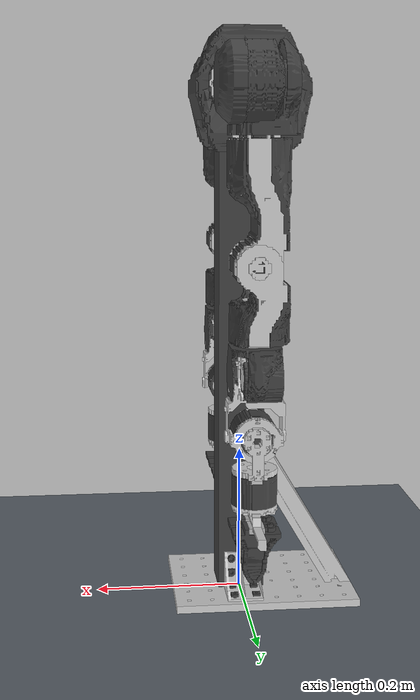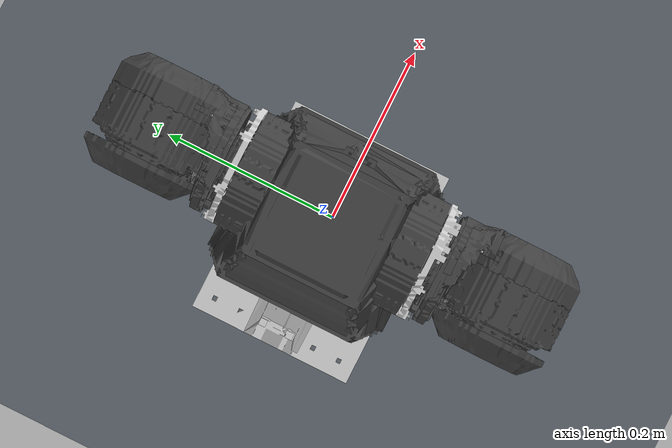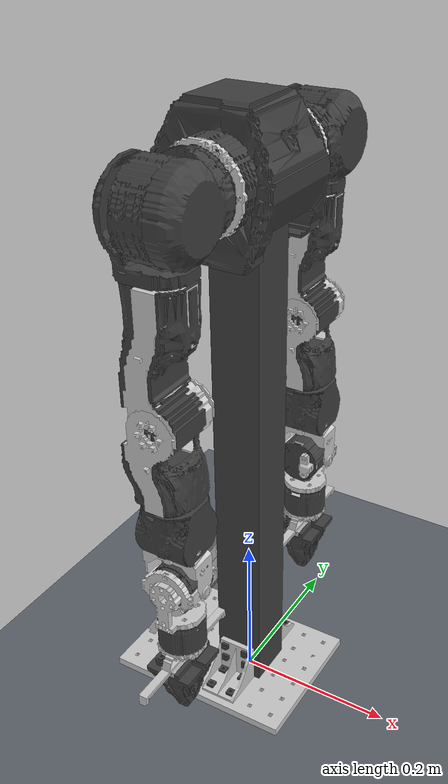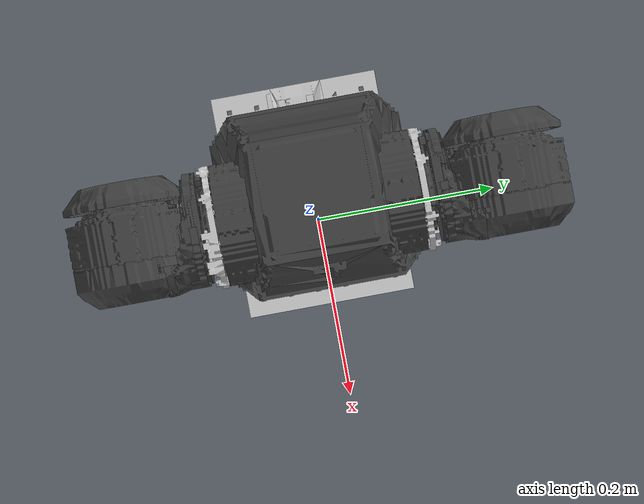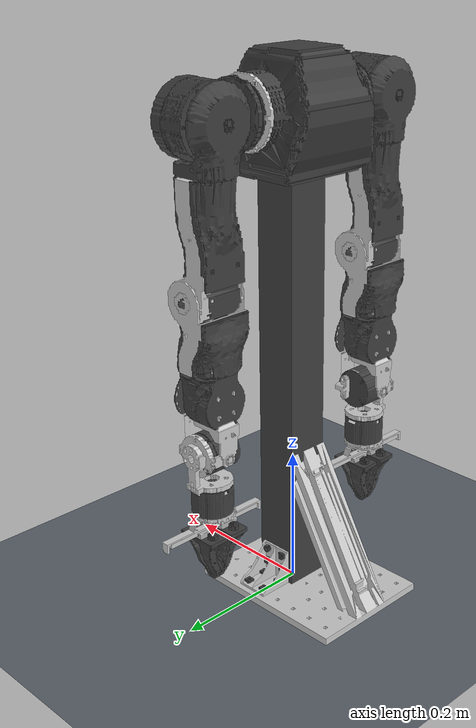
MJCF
<mujoco model="OpenArm teleoperation scene">
  <!-- Keep the signed robot model and all its geometry unchanged. -->
  <include file="openarm_bimanual.xml"/>
  <visual>
    <headlight ambient="0.25 0.25 0.25" diffuse="0.45 0.45 0.45" specular="0.2 0.2 0.2"/>
    <rgba haze="0.75 0.8 0.85 1"/>
    <global offwidth="1280" offheight="720"/>
  </visual>
  <statistic center="0 0 0.9" extent="1.8"/>
  <asset>
    <texture name="scene_sky" type="skybox" builtin="gradient" rgb1="0.65 0.75 0.85" rgb2="0.95 0.95 0.95" width="512" height="3072"/>
    <texture name="scene_floor" type="2d" builtin="checker" rgb1="0.3 0.33 0.36" rgb2="0.4 0.43 0.46" width="512" height="512"/>
    <material name="scene_floor" texture="scene_floor" texrepeat="4 4" texuniform="true" reflectance="0.05"/>
  </asset>
  <worldbody>
    <light name="scene_key" pos="2 -2 3" dir="-0.5 0.5 -1" directional="true" diffuse="0.45 0.45 0.45" specular="0.2 0.2 0.2"/>
    <light name="scene_fill" pos="-2 2 2.5" dir="0.5 -0.5 -1" directional="true" diffuse="0.2 0.2 0.2" castshadow="false"/>
    <geom name="scene_floor" type="plane" size="0 0 0.05" material="scene_floor" contype="0" conaffinity="0"/>
  </worldbody>
</mujoco>

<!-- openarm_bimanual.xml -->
<mujoco model="openarm">
  <default>
    <default class="robot">
      <default class="position_DM8009">
        <joint frictionloss="0.1" damping="0.2" armature="1.0" limited="true" type="hinge" />
        <position forcelimited="true" forcerange="-400 400" ctrllimited="true" inheritrange="1" kp="1000" dampratio="1" />
      </default>
      <default class="position_DM4340">
        <joint frictionloss="0.1" damping="0.2" armature="1.0" limited="true" type="hinge" />
        <position forcelimited="true" forcerange="-270 270" ctrllimited="true" inheritrange="1" kp="800" dampratio="1" />
      </default>
      <default class="position_DM4310">
        <joint frictionloss="0.1" damping="0.2" armature="1.0" limited="true" type="hinge" />
        <position forcelimited="true" forcerange="-70 70" ctrllimited="true" inheritrange="1" kp="600" dampratio="1" />
      </default>
      <default class="motor_finger">
        <joint limited="true" type="slide" damping="2" stiffness="0.5" armature="0.1"/>
        <position forcelimited="true" forcerange="-333 333" ctrllimited="true" ctrlrange="0 0.044" kp="500" dampratio="1"/>
      </default>
      <default class="collision">
        <geom material="collision_material" condim="3" contype="0" conaffinity="0" priority="1" group="3"
          solref="0.005 1" friction="1 0.01 0.01" />
        <equality solimp="0.99 0.999 1e-05" solref="0.005 1" />
      </default>
      <default class="visual">
        <geom material="visualgeom" contype="0" conaffinity="0" group="2" />
      </default>
    </default>
  </default>

  <compiler angle="radian" meshdir="meshes" />

  <option timestep="0.002" iterations="30" solver="CG" tolerance="1e-6" />

  <asset>
    <material name="default_material" rgba="0.7 0.7 0.7 1" />
    <material name="collision_material" rgba="1.0 0.28 0.1 0.9" />

    <mesh name="body_collision" file="collision/body/body_link0.stl" scale="0.001 0.001 0.001" />
    <mesh name="link0_collision" file="collision/arm/link0.stl" scale="0.001 0.001 0.001" />
    <mesh name="link0_collision_left" file="collision/arm/link0.stl" scale="0.001 -0.001 0.001" />
    <mesh name="link1_collision" file="collision/arm/link1.stl" scale="0.001 0.001 0.001" />
    <mesh name="link1_collision_left" file="collision/arm/link1.stl" scale="0.001 -0.001 0.001" />
    <mesh name="link2_collision" file="collision/arm/link2.stl" scale="0.001 0.001 0.001" />
    <mesh name="link2_collision_left" file="collision/arm/link2.stl" scale="0.001 -0.001 0.001" />
    <mesh name="link3_collision" file="collision/arm/link3.stl" scale="0.001 0.001 0.001" />
    <mesh name="link3_collision_left" file="collision/arm/link3.stl" scale="0.001 -0.001 0.001" />
    <mesh name="link4_collision" file="collision/arm/link4.stl" scale="0.001 0.001 0.001" />
    <mesh name="link5_collision" file="collision/arm/link5.stl" scale="0.001 0.001 0.001" />
    <mesh name="link5_collision_left" file="collision/arm/link5.stl" scale="0.001 -0.001 0.001" />
    <mesh name="link6_collision" file="collision/arm/link6.stl" scale="0.001 0.001 0.001" />
    <mesh name="link6_collision_left" file="collision/arm/link6.stl" scale="0.001 -0.001 0.001" />
    <mesh name="link7_collision" file="collision/arm/link7.stl" scale="0.001 0.001 0.001" />
    <mesh name="link7_collision_left" file="collision/arm/link7.stl" scale="0.001 -0.001 0.001" />
    <mesh name="hand_collision" file="collision/gripper/hand.stl" scale="0.001 0.001 0.001" />
    <mesh name="finger_collision" file="collision/gripper/finger.stl" scale="0.001 0.001 0.001" />
    <mesh name="finger_collision_left" file="collision/gripper/finger.stl"
      scale="0.001 -0.001 0.001" />

    <mesh name="body_link0_0.obj" file="visual/body/body_link0_0.obj" scale="0.001 0.001 0.001" />
    <mesh name="body_link0_1.obj" file="visual/body/body_link0_1.obj" scale="0.001 0.001 0.001" />
    <mesh name="body_link0_2.obj" file="visual/body/body_link0_2.obj" scale="0.001 0.001 0.001" />
    <mesh name="body_link0_3.obj" file="visual/body/body_link0_3.obj" scale="0.001 0.001 0.001" />
    <mesh name="body_link0_4.obj" file="visual/body/body_link0_4.obj" scale="0.001 0.001 0.001" />
    <mesh name="body_link0_5.obj" file="visual/body/body_link0_5.obj" scale="0.001 0.001 0.001" />

    <mesh name="link0_0.obj" file="visual/arm/link0_0.obj" scale="0.001 0.001 0.001" />
    <mesh name="link0_1.obj" file="visual/arm/link0_1.obj" scale="0.001 0.001 0.001" />
    <mesh name="link1_0.obj" file="visual/arm/link1_0.obj" scale="0.001 0.001 0.001" />
    <mesh name="link1_1.obj" file="visual/arm/link1_1.obj" scale="0.001 0.001 0.001" />
    <mesh name="link1_2.obj" file="visual/arm/link1_2.obj" scale="0.001 0.001 0.001" />
    <mesh name="link1_3.obj" file="visual/arm/link1_3.obj" scale="0.001 0.001 0.001" />
    <mesh name="link2_0.obj" file="visual/arm/link2_0.obj" scale="0.001 0.001 0.001" />
    <mesh name="link2_1.obj" file="visual/arm/link2_1.obj" scale="0.001 0.001 0.001" />
    <mesh name="link2_2.obj" file="visual/arm/link2_2.obj" scale="0.001 0.001 0.001" />
    <mesh name="link3_0.obj" file="visual/arm/link3_0.obj" scale="0.001 0.001 0.001" />
    <mesh name="link3_1.obj" file="visual/arm/link3_1.obj" scale="0.001 0.001 0.001" />
    <mesh name="link3_2.obj" file="visual/arm/link3_2.obj" scale="0.001 0.001 0.001" />
    <mesh name="link4_0.obj" file="visual/arm/link4_0.obj" scale="0.001 0.001 0.001" />
    <mesh name="link4_1.obj" file="visual/arm/link4_1.obj" scale="0.001 0.001 0.001" />
    <mesh name="link4_2.obj" file="visual/arm/link4_2.obj" scale="0.001 0.001 0.001" />
    <mesh name="link5_0.obj" file="visual/arm/link5_0.obj" scale="0.001 0.001 0.001" />
    <mesh name="link5_1.obj" file="visual/arm/link5_1.obj" scale="0.001 0.001 0.001" />
    <mesh name="link5_2.obj" file="visual/arm/link5_2.obj" scale="0.001 0.001 0.001" />
    <mesh name="link6_0.obj" file="visual/arm/link6_0.obj" scale="0.001 0.001 0.001" />
    <mesh name="link6_1.obj" file="visual/arm/link6_1.obj" scale="0.001 0.001 0.001" />
    <mesh name="link6_0_left.obj" file="visual/arm/link6_0.obj" scale="0.001 -0.001 0.001" />
    <mesh name="link6_1_left.obj" file="visual/arm/link6_1.obj" scale="0.001 -0.001 0.001" />
    <mesh name="link7_0.obj" file="visual/arm/link7_0.obj" scale="0.001 0.001 0.001" />
    <mesh name="link7_1.obj" file="visual/arm/link7_1.obj" scale="0.001 0.001 0.001" />
    <mesh name="link7_0_left.obj" file="visual/arm/link7_0.obj" scale="0.001 -0.001 0.001" />
    <mesh name="link7_1_left.obj" file="visual/arm/link7_1.obj" scale="0.001 -0.001 0.001" />

    <mesh name="hand_0.obj" file="visual/gripper/hand_0.obj" scale="0.001 0.001 0.001" />
    <mesh name="hand_1.obj" file="visual/gripper/hand_1.obj" scale="0.001 0.001 0.001" />
    <mesh name="finger_0.obj" file="visual/gripper/finger_0.obj" scale="0.001 0.001 0.001" />
    <mesh name="finger_0_flip.obj" file="visual/gripper/finger_0.obj" scale="0.001 -0.001 0.001" />
    <mesh name="finger_1.obj" file="visual/gripper/finger_1.obj" scale="0.001 0.001 0.001" />
    <mesh name="finger_1_flip.obj" file="visual/gripper/finger_1.obj" scale="0.001 -0.001 0.001" />

    <material name="matte_black" rgba="0.24705882 0.24705882 0.24705882 1.0"
      reflectance="0.05098039000000001" shininess="0.5" />
    <material name="metal_silver" rgba="0.79607843 0.79607843 0.79607843 1.0" reflectance="1.0"
      shininess="1.0" />
  </asset>

  <worldbody>

    <body name="base_mocap_mover" mocap="true" pos="0 0 0" quat="1 0 0 0">
    <body name="openarm_body_link0" pos="0 0 0" quat="1.0 0.0 0.0 0.0">
      <inertial pos="0.0 0.0 0.0" quat="1.0 0.0 0.0 0.0" mass="13.89"
        diaginertia="1.653 1.653 0.051" />
      <geom name="openarm_body_link0_collision" pos="0.0 0.0 0.0" quat="1.0 0.0 0.0 0.0" type="mesh"
        mesh="body_link0_3.obj" class="collision" />
      <geom name="openarm_body_link0_visual_0" pos="0.0 0.0 0.0" quat="1.0 0.0 0.0 0.0"
        material="matte_black" type="mesh" mesh="body_link0_0.obj" class="visual" />
      <geom name="openarm_body_link0_visual_1" pos="0.0 0.0 0.0" quat="1.0 0.0 0.0 0.0"
        material="metal_silver" type="mesh" mesh="body_link0_1.obj" class="visual" />
      <geom name="openarm_body_link0_visual_2" pos="0.0 0.0 0.0" quat="1.0 0.0 0.0 0.0"
        material="matte_black" type="mesh" mesh="body_link0_2.obj" class="visual" />
      <geom name="openarm_body_link0_visual_3" pos="0.0 0.0 0.0" quat="1.0 0.0 0.0 0.0"
        material="matte_black" type="mesh" mesh="body_link0_3.obj" class="visual" />
      <geom name="openarm_body_link0_visual_4" pos="0.0 0.0 0.0" quat="1.0 0.0 0.0 0.0"
        material="metal_silver" type="mesh" mesh="body_link0_4.obj" class="visual" />
      <geom name="openarm_body_link0_visual_5" pos="0.0 0.0 0.0" quat="1.0 0.0 0.0 0.0"
        material="matte_black" type="mesh" mesh="body_link0_5.obj" class="visual" />
      <body name="openarm_left_link0" pos="0.0 0.031 0.698"
        quat="0.7071054825112363 -0.7071080798594735 0.0 0.0">
        <inertial pos="-0.0009483362816297526 0.0001580207020448382 0.03076860287587199"
          quat="1.0 0.0 0.0 0.0" mass="1.1432284943239561" diaginertia="0.001128 0.000962 0.00147" />
        <geom name="openarm_left_link0_collision" pos="0.0 0.0 0.0" quat="1.0 0.0 0.0 0.0"
          type="mesh" mesh="link0_collision_left" class="collision" />
        <geom name="openarm_left_link0_visual_0" pos="0.0 0.0 0.0" quat="1.0 0.0 0.0 0.0"
          material="metal_silver" type="mesh" mesh="link0_0.obj" class="visual" />
        <geom name="openarm_left_link0_visual_1" pos="0.0 0.0 0.0" quat="1.0 0.0 0.0 0.0"
          material="matte_black" type="mesh" mesh="link0_1.obj" class="visual" />
        <body name="openarm_left_link1" pos="0.0 0.0 0.0625" quat="1.0 0.0 0.0 0.0">
          <joint name="openarm_left_joint1" type="hinge" ref="0.0" class="position_DM8009"
            range="-3.490659 1.3962629999999998" axis="0 0 1" />
          <inertial pos="0.0011467657911800769 3.319987657026362e-05 0.05395284380736254"
            quat="1.0 0.0 0.0 0.0" mass="1.1416684646202298"
            diaginertia="0.001567 0.001273 0.001016" />
          <geom name="openarm_left_link1_collision" pos="-0.0 0.0 -0.0625" quat="1.0 0.0 0.0 0.0"
            type="mesh" mesh="link1_collision_left" class="collision" />
          <geom name="openarm_left_link1_visual_0" pos="-0.0 0.0 -0.0625" quat="1.0 0.0 0.0 0.0"
            material="matte_black" type="mesh" mesh="link1_0.obj" class="visual" />
          <geom name="openarm_left_link1_visual_2" pos="-0.0 0.0 -0.0625" quat="1.0 0.0 0.0 0.0"
            material="matte_black" type="mesh" mesh="link1_2.obj" class="visual" />
          <geom name="openarm_left_link1_visual_3" pos="-0.0 0.0 -0.0625" quat="1.0 0.0 0.0 0.0"
            material="matte_black" type="mesh" mesh="link1_3.obj" class="visual" />
          <body name="openarm_left_link2" pos="-0.0301 0.0 0.06"
            quat="0.7071067811882787 -0.7071067811848163 0.0 0.0">
            <joint name="openarm_left_joint2" type="hinge" ref="0.0" class="position_DM8009"
              range="-3.3161253267948965 0.17453267320510335" axis="-1 0 0" />
            <inertial pos="0.00839629182351943 -2.0145102027597523e-08 0.03256649300522363"
              quat="1.0 0.0 0.0 0.0" mass="0.2775092746011571"
              diaginertia="0.000359 0.000376 0.000232" />
            <geom name="openarm_left_link2_collision" pos="0.0301 0.0 -0.1225"
              quat="1.0 0.0 0.0 0.0" type="mesh" mesh="link2_collision_left" class="collision" />
            <geom name="openarm_left_link2_visual_0" pos="0.0301 0.0 -0.1225" quat="1.0 0.0 0.0 0.0"
              material="matte_black" type="mesh" mesh="link2_0.obj" class="visual" />
            <geom name="openarm_left_link2_visual_1" pos="0.0301 0.0 -0.1225" quat="1.0 0.0 0.0 0.0"
              material="matte_black" type="mesh" mesh="link2_1.obj" class="visual" />
            <geom name="openarm_left_link2_visual_2" pos="0.0301 0.0 -0.1225" quat="1.0 0.0 0.0 0.0"
              material="matte_black" type="mesh" mesh="link2_2.obj" class="visual" />
            <body name="openarm_left_link3" pos="0.0301 0.0 0.06625" quat="1.0 0.0 0.0 0.0">
              <joint name="openarm_left_joint3" type="hinge" ref="0.0" class="position_DM4340"
                range="-1.570796 1.570796" axis="0 0 1" />
              <inertial pos="-0.002104752099628911 0.0005549085042607548 0.08847470545721961"
                quat="1.0 0.0 0.0 0.0" mass="1.073863338202347"
                diaginertia="0.004372 0.004319 0.000661" />
              <geom name="openarm_left_link3_collision" pos="-0.0 -0.0 -0.18875"
                quat="1.0 0.0 0.0 0.0" type="mesh" mesh="link3_collision_left" class="collision" />
              <geom name="openarm_left_link3_visual_0" pos="-0.0 -0.0 -0.18875"
                quat="1.0 0.0 0.0 0.0" material="matte_black" type="mesh" mesh="link3_0.obj"
                class="visual" />
              <geom name="openarm_left_link3_visual_1" pos="-0.0 -0.0 -0.18875"
                quat="1.0 0.0 0.0 0.0" material="matte_black" type="mesh" mesh="link3_1.obj"
                class="visual" />
              <geom name="openarm_left_link3_visual_2" pos="-0.0 -0.0 -0.18875"
                quat="1.0 0.0 0.0 0.0" material="metal_silver" type="mesh" mesh="link3_2.obj"
                class="visual" />
              <body name="openarm_left_link4" pos="-0.0 0.0315 0.15375" quat="1.0 0.0 0.0 0.0">
                <joint name="openarm_left_joint4" type="hinge" ref="0.0" class="position_DM4340"
                  range="0.0 2.443461" axis="0 1 0" />
                <inertial pos="-0.0029006831074562967 -0.03030575826634669 0.06339637422196209"
                  quat="1.0 0.0 0.0 0.0" mass="0.6348534566833373"
                  diaginertia="0.001577 0.001346 0.001104" />
                <geom name="openarm_left_link4_collision" pos="0.0 -0.0315 -0.3425"
                  quat="1.0 0.0 0.0 0.0" type="mesh" mesh="link4_collision" class="collision" />
                <geom name="openarm_left_link4_visual_0" pos="0.0 -0.0315 -0.3425"
                  quat="1.0 0.0 0.0 0.0" material="matte_black" type="mesh" mesh="link4_0.obj"
                  class="visual" />
                <geom name="openarm_left_link4_visual_1" pos="0.0 -0.0315 -0.3425"
                  quat="1.0 0.0 0.0 0.0" material="metal_silver" type="mesh" mesh="link4_1.obj"
                  class="visual" />
                <geom name="openarm_left_link4_visual_2" pos="0.0 -0.0315 -0.3425"
                  quat="1.0 0.0 0.0 0.0" material="matte_black" type="mesh" mesh="link4_2.obj"
                  class="visual" />
                <body name="openarm_left_link5" pos="0.0 -0.0315 0.0955" quat="1.0 0.0 0.0 0.0">
                  <joint name="openarm_left_joint5" type="hinge" ref="0.0" class="position_DM4310"
                    range="-1.570796 1.570796" axis="0 0 1" />
                  <inertial pos="-0.003049665024221911 0.0008866902457326625 0.043079803024980934"
                    quat="1.0 0.0 0.0 0.0" mass="0.6156588026168502"
                    diaginertia="0.000423 0.000445 0.000324" />
                  <geom name="openarm_left_link5_collision" pos="-0.0 -0.0 -0.438"
                    quat="1.0 0.0 0.0 0.0" type="mesh" mesh="link5_collision_left" class="collision" />
                  <geom name="openarm_left_link5_visual_0" pos="-0.0 -0.0 -0.438"
                    quat="1.0 0.0 0.0 0.0" material="matte_black" type="mesh" mesh="link5_0.obj"
                    class="visual" />
                  <geom name="openarm_left_link5_visual_1" pos="-0.0 -0.0 -0.438"
                    quat="1.0 0.0 0.0 0.0" material="metal_silver" type="mesh" mesh="link5_1.obj"
                    class="visual" />
                  <geom name="openarm_left_link5_visual_2" pos="-0.0 -0.0 -0.438"
                    quat="1.0 0.0 0.0 0.0" material="matte_black" type="mesh" mesh="link5_2.obj"
                    class="visual" />
                  <body name="openarm_left_link6" pos="0.0375 0.0 0.1205" quat="1.0 0.0 0.0 0.0">
                    <joint name="openarm_left_joint6" type="hinge" ref="0.0" class="position_DM4310"
                      range="-0.785398 0.785398" axis="1 0 0" />
                    <inertial
                      pos="-0.037136587005447405 0.00033230528343419053 -9.498374522309838e-05"
                      quat="1.0 0.0 0.0 0.0" mass="0.475202773187987"
                      diaginertia="0.000143 0.000157 0.000159" />
                    <geom name="openarm_left_link6_collision" pos="-0.0375 -0.0 -0.5585"
                      quat="1.0 0.0 0.0 0.0" type="mesh" mesh="link6_collision_left"
                      class="collision" />
                    <geom name="openarm_left_link6_visual_0" pos="-0.0375 -0.0 -0.5585"
                      quat="1.0 0.0 0.0 0.0" material="matte_black" type="mesh"
                      mesh="link6_0_left.obj" class="visual" />
                    <geom name="openarm_left_link6_visual_1" pos="-0.0375 -0.0 -0.5585"
                      quat="1.0 0.0 0.0 0.0" material="metal_silver" type="mesh"
                      mesh="link6_1_left.obj" class="visual" />
                    <body name="openarm_left_link7" pos="-0.0375 0.0 0.0" quat="1.0 0.0 0.0 0.0">
                      <joint name="openarm_left_joint7" type="hinge" ref="0.0" class="position_DM4310"
                        range="-1.570796 1.570796" axis="0 -1 0" />
                      <inertial pos="6.875510271106056e-05 -0.01766175250761268 0.06651945409987448"
                        quat="1.0 0.0 0.0 0.0" mass="0.4659771327380578"
                        diaginertia="0.000639 0.000497 0.000342" />
                      <geom name="openarm_left_link7_collision" pos="0.0 -0.0 -0.5585"
                        quat="1.0 0.0 0.0 0.0" type="mesh" mesh="link7_collision_left"
                        class="collision" />
                      <geom name="openarm_left_link7_visual_0" pos="0.0 -0.0 -0.5585"
                        quat="1.0 0.0 0.0 0.0" material="metal_silver" type="mesh"
                        mesh="link7_0_left.obj" class="visual" />
                      <geom name="openarm_left_link7_visual_1" pos="0.0 -0.0 -0.5585"
                        quat="1.0 0.0 0.0 0.0" material="matte_black" type="mesh"
                        mesh="link7_1_left.obj" class="visual" />
                      <body name="openarm_left_link8" pos="1e-06 0.0205 0.0" quat="1.0 0.0 0.0 0.0">
                        <body name="openarm_left_hand" pos="0 -0.025 0.1001" quat="1.0 0.0 0.0 0.0">
                          <inertial pos="0.0 0.002 0.01" quat="1.0 0.0 0.0 0.0" mass="0.15"
                            diaginertia="0.0001 0.00025 0.00017" />
                          <geom name="openarm_left_hand_collision" pos="0.0 0.005 -0.6585"
                            quat="1.0 0.0 0.0 0.0" type="mesh" mesh="hand_collision"
                            class="collision" />
                          <geom name="openarm_left_hand_visual_0" pos="0.0 0.005 -0.6585"
                            quat="1.0 0.0 0.0 0.0" material="metal_silver" type="mesh"
                            mesh="hand_0.obj" class="visual" />
                          <geom name="openarm_left_hand_visual_1" pos="0.0 0.005 -0.6585"
                            quat="1.0 0.0 0.0 0.0" material="metal_silver" type="mesh"
                            mesh="hand_1.obj" class="visual" />
                          <body name="openarm_left_hand_tcp" pos="0 -0.0 0.08"
                            quat="1.0 0.0 0.0 0.0" />
                          <body name="openarm_left_right_finger" pos="0 0.00 0.015"
                            quat="1.0 0.0 0.0 0.0">
                            <joint name="openarm_left_finger_joint1" type="slide" ref="0.0"
                              class="motor_finger" range="0.0 0.044" axis="0 -1 0" />
                            <inertial pos="0.0064528 -0.01702 0.0219685" quat="1.0 0.0 0.0 0.0"
                              mass="0.03602545343277134"
                              diaginertia="2.3749999999999997e-06 2.3749999999999997e-06 7.5e-07" />
                            <geom name="openarm_left_right_finger_collision"
                              pos="0.0 0.05 -0.673001" quat="1.0 0.0 0.0 0.0" type="mesh"
                              mesh="finger_collision_left" class="collision" />
                            <geom name="openarm_left_right_finger_visual_0" pos="0.0 0.05 -0.673001"
                              quat="1.0 0.0 0.0 0.0" material="default_material" type="mesh"
                              mesh="finger_0_flip.obj" class="visual" />
                            <geom name="openarm_left_right_finger_visual_1" pos="0.0 0.05 -0.673001"
                              quat="1.0 0.0 0.0 0.0" material="matte_black" type="mesh"
                              mesh="finger_1_flip.obj" class="visual" />
                          </body>
                          <body name="openarm_left_left_finger" pos="0 0.012 0.015"
                            quat="1.0 0.0 0.0 0.0">
                            <joint name="openarm_left_finger_joint2" type="slide" ref="0.0"
                              class="motor_finger" range="0.0 0.044" axis="0 1 0" />
                            <inertial pos="0.0064528 0.01702 0.0219685" quat="1.0 0.0 0.0 0.0"
                              mass="0.03602545343277134"
                              diaginertia="2.3749999999999997e-06 2.3749999999999997e-06 7.5e-07" />
                            <geom name="openarm_left_left_finger_collision"
                              pos="0.0 -0.05 -0.673001" quat="1.0 0.0 0.0 0.0" type="mesh"
                              mesh="finger_collision" class="collision" />
                            <geom name="openarm_left_left_finger_visual_0" pos="0.0 -0.05 -0.673001"
                              quat="1.0 0.0 0.0 0.0" material="default_material" type="mesh"
                              mesh="finger_0.obj" class="visual" />
                            <geom name="openarm_left_left_finger_visual_1" pos="0.0 -0.05 -0.673001"
                              quat="1.0 0.0 0.0 0.0" material="matte_black" type="mesh"
                              mesh="finger_1.obj" class="visual" />
                          </body>
                        </body>
                      </body>
                    </body>
                  </body>
                </body>
              </body>
            </body>
          </body>
        </body>
      </body>
      <body name="openarm_right_link0" pos="0.0 -0.031 0.698"
        quat="0.7071054825112363 0.7071080798594735 0.0 0.0">
        <inertial pos="-0.0009483362816297526 0.0001580207020448382 0.03076860287587199"
          quat="1.0 0.0 0.0 0.0" mass="1.1432284943239561" diaginertia="0.001128 0.000962 0.00147" />
        <geom name="openarm_right_link0_collision" pos="0.0 0.0 0.0" quat="1.0 0.0 0.0 0.0"
          type="mesh" mesh="link0_collision" class="collision" />
        <geom name="openarm_right_link0_visual_0" pos="0.0 0.0 0.0" quat="1.0 0.0 0.0 0.0"
          material="metal_silver" type="mesh" mesh="link0_0.obj" class="visual" />
        <geom name="openarm_right_link0_visual_1" pos="0.0 0.0 0.0" quat="1.0 0.0 0.0 0.0"
          material="matte_black" type="mesh" mesh="link0_1.obj" class="visual" />
        <body name="openarm_right_link1" pos="0.0 0.0 0.0625" quat="1.0 0.0 0.0 0.0">
          <joint name="openarm_right_joint1" type="hinge" ref="0.0" class="position_DM8009"
            range="-1.396263 3.490659" axis="0 0 1" />
          <inertial pos="0.0011467657911800769 3.319987657026362e-05 0.05395284380736254"
            quat="1.0 0.0 0.0 0.0" mass="1.1416684646202298"
            diaginertia="0.001567 0.001273 0.001016" />
          <geom name="openarm_right_link1_collision" pos="-0.0 0.0 -0.0625" quat="1.0 0.0 0.0 0.0"
            type="mesh" mesh="link1_collision" class="collision" />
          <geom name="openarm_right_link1_visual_0" pos="-0.0 0.0 -0.0625" quat="1.0 0.0 0.0 0.0"
            material="matte_black" type="mesh" mesh="link1_0.obj" class="visual" />
          <geom name="openarm_right_link1_visual_2" pos="-0.0 0.0 -0.0625" quat="1.0 0.0 0.0 0.0"
            material="matte_black" type="mesh" mesh="link1_2.obj" class="visual" />
          <geom name="openarm_right_link1_visual_3" pos="-0.0 0.0 -0.0625" quat="1.0 0.0 0.0 0.0"
            material="matte_black" type="mesh" mesh="link1_3.obj" class="visual" />
          <body name="openarm_right_link2" pos="-0.0301 0.0 0.06"
            quat="0.7071067811882787 0.7071067811848163 0.0 0.0">
            <joint name="openarm_right_joint2" type="hinge" ref="0.0" class="position_DM8009"
              range="-0.17453267320510335 3.3161253267948965" axis="-1 0 0" />
            <inertial pos="0.00839629182351943 -2.0145102027597523e-08 0.03256649300522363"
              quat="1.0 0.0 0.0 0.0" mass="0.2775092746011571"
              diaginertia="0.000359 0.000376 0.000232" />
            <geom name="openarm_right_link2_collision" pos="0.0301 0.0 -0.1225"
              quat="1.0 0.0 0.0 0.0" type="mesh" mesh="link2_collision" class="collision" />
            <geom name="openarm_right_link2_visual_0" pos="0.0301 0.0 -0.1225"
              quat="1.0 0.0 0.0 0.0" material="matte_black" type="mesh" mesh="link2_0.obj"
              class="visual" />
            <geom name="openarm_right_link2_visual_1" pos="0.0301 0.0 -0.1225"
              quat="1.0 0.0 0.0 0.0" material="matte_black" type="mesh" mesh="link2_1.obj"
              class="visual" />
            <geom name="openarm_right_link2_visual_2" pos="0.0301 0.0 -0.1225"
              quat="1.0 0.0 0.0 0.0" material="matte_black" type="mesh" mesh="link2_2.obj"
              class="visual" />
            <body name="openarm_right_link3" pos="0.0301 0.0 0.06625" quat="1.0 0.0 0.0 0.0">
              <joint name="openarm_right_joint3" type="hinge" ref="0.0" class="position_DM4340"
                range="-1.570796 1.570796" axis="0 0 1" />
              <inertial pos="-0.002104752099628911 0.0005549085042607548 0.08847470545721961"
                quat="1.0 0.0 0.0 0.0" mass="1.073863338202347"
                diaginertia="0.004372 0.004319 0.000661" />
              <geom name="openarm_right_link3_collision" pos="-0.0 -0.0 -0.18875"
                quat="1.0 0.0 0.0 0.0" type="mesh" mesh="link3_collision" class="collision" />
              <geom name="openarm_right_link3_visual_0" pos="-0.0 -0.0 -0.18875"
                quat="1.0 0.0 0.0 0.0" material="matte_black" type="mesh" mesh="link3_0.obj"
                class="visual" />
              <geom name="openarm_right_link3_visual_1" pos="-0.0 -0.0 -0.18875"
                quat="1.0 0.0 0.0 0.0" material="matte_black" type="mesh" mesh="link3_1.obj"
                class="visual" />
              <geom name="openarm_right_link3_visual_2" pos="-0.0 -0.0 -0.18875"
                quat="1.0 0.0 0.0 0.0" material="metal_silver" type="mesh" mesh="link3_2.obj"
                class="visual" />
              <body name="openarm_right_link4" pos="-0.0 0.0315 0.15375" quat="1.0 0.0 0.0 0.0">
                <joint name="openarm_right_joint4" type="hinge" ref="0.0" class="position_DM4340"
                  range="0.0 2.443461" axis="0 1 0" />
                <inertial pos="-0.0029006831074562967 -0.03030575826634669 0.06339637422196209"
                  quat="1.0 0.0 0.0 0.0" mass="0.6348534566833373"
                  diaginertia="0.001577 0.001346 0.001104" />
                <geom name="openarm_right_link4_collision" pos="0.0 -0.0315 -0.3425"
                  quat="1.0 0.0 0.0 0.0" type="mesh" mesh="link4_collision" class="collision" />
                <geom name="openarm_right_link4_visual_0" pos="0.0 -0.0315 -0.3425"
                  quat="1.0 0.0 0.0 0.0" material="matte_black" type="mesh" mesh="link4_0.obj"
                  class="visual" />
                <geom name="openarm_right_link4_visual_1" pos="0.0 -0.0315 -0.3425"
                  quat="1.0 0.0 0.0 0.0" material="metal_silver" type="mesh" mesh="link4_1.obj"
                  class="visual" />
                <geom name="openarm_right_link4_visual_2" pos="0.0 -0.0315 -0.3425"
                  quat="1.0 0.0 0.0 0.0" material="matte_black" type="mesh" mesh="link4_2.obj"
                  class="visual" />
                <body name="openarm_right_link5" pos="0.0 -0.0315 0.0955" quat="1.0 0.0 0.0 0.0">
                  <joint name="openarm_right_joint5" type="hinge" ref="0.0" class="position_DM4310"
                    range="-1.570796 1.570796" axis="0 0 1" />
                  <inertial pos="-0.003049665024221911 0.0008866902457326625 0.043079803024980934"
                    quat="1.0 0.0 0.0 0.0" mass="0.6156588026168502"
                    diaginertia="0.000423 0.000445 0.000324" />
                  <geom name="openarm_right_link5_collision" pos="-0.0 -0.0 -0.438"
                    quat="1.0 0.0 0.0 0.0" type="mesh" mesh="link5_collision" class="collision" />
                  <geom name="openarm_right_link5_visual_0" pos="-0.0 -0.0 -0.438"
                    quat="1.0 0.0 0.0 0.0" material="matte_black" type="mesh" mesh="link5_0.obj"
                    class="visual" />
                  <geom name="openarm_right_link5_visual_1" pos="-0.0 -0.0 -0.438"
                    quat="1.0 0.0 0.0 0.0" material="metal_silver" type="mesh" mesh="link5_1.obj"
                    class="visual" />
                  <geom name="openarm_right_link5_visual_2" pos="-0.0 -0.0 -0.438"
                    quat="1.0 0.0 0.0 0.0" material="matte_black" type="mesh" mesh="link5_2.obj"
                    class="visual" />
                  <body name="openarm_right_link6" pos="0.0375 0.0 0.1205" quat="1.0 0.0 0.0 0.0">
                    <joint name="openarm_right_joint6" type="hinge" ref="0.0" class="position_DM4310"
                      range="-0.785398 0.785398" axis="1 0 0" />
                    <inertial
                      pos="-0.037136587005447405 0.00033230528343419053 -9.498374522309838e-05"
                      quat="1.0 0.0 0.0 0.0" mass="0.475202773187987"
                      diaginertia="0.000143 0.000157 0.000159" />
                    <geom name="openarm_right_link6_collision" pos="-0.0375 -0.0 -0.5585"
                      quat="1.0 0.0 0.0 0.0" type="mesh" mesh="link6_collision" class="collision" />
                    <geom name="openarm_right_link6_visual_0" pos="-0.0375 -0.0 -0.5585"
                      quat="1.0 0.0 0.0 0.0" material="matte_black" type="mesh" mesh="link6_0.obj"
                      class="visual" />
                    <geom name="openarm_right_link6_visual_1" pos="-0.0375 -0.0 -0.5585"
                      quat="1.0 0.0 0.0 0.0" material="metal_silver" type="mesh" mesh="link6_1.obj"
                      class="visual" />
                    <body name="openarm_right_link7" pos="-0.0375 0.0 0.0" quat="1.0 0.0 0.0 0.0">
                      <joint name="openarm_right_joint7" type="hinge" ref="0.0" class="position_DM4310"
                        range="-1.570796 1.570796" axis="0 1 0" />
                      <inertial pos="6.875510271106056e-05 -0.01766175250761268 0.06651945409987448"
                        quat="1.0 0.0 0.0 0.0" mass="0.4659771327380578"
                        diaginertia="0.000639 0.000497 0.000342" />
                      <geom name="openarm_right_link7_collision" pos="0.0 -0.0 -0.5585"
                        quat="1.0 0.0 0.0 0.0" type="mesh" mesh="link7_collision" class="collision" />
                      <geom name="openarm_right_link7_visual_0" pos="0.0 -0.0 -0.5585"
                        quat="1.0 0.0 0.0 0.0" material="metal_silver" type="mesh"
                        mesh="link7_0.obj" class="visual" />
                      <geom name="openarm_right_link7_visual_1" pos="0.0 -0.0 -0.5585"
                        quat="1.0 0.0 0.0 0.0" material="matte_black" type="mesh" mesh="link7_1.obj"
                        class="visual" />
                      <body name="openarm_right_link8" pos="1e-06 0.0205 0.0" quat="1.0 0.0 0.0 0.0">
                        <body name="openarm_right_hand" pos="0 -0.025 0.1001" quat="1.0 0.0 0.0 0.0">
                          <inertial pos="0.0 0.002 0.01" quat="1.0 0.0 0.0 0.0" mass="0.15"
                            diaginertia="0.0001 0.00025 0.00017" />
                          <geom name="openarm_right_hand_collision" pos="0.0 0.005 -0.6585"
                            quat="1.0 0.0 0.0 0.0" type="mesh" mesh="hand_collision"
                            class="collision" />
                          <geom name="openarm_right_hand_visual_0" pos="0.0 0.005 -0.6585"
                            quat="1.0 0.0 0.0 0.0" material="metal_silver" type="mesh"
                            mesh="hand_0.obj" class="visual" />
                          <geom name="openarm_right_hand_visual_1" pos="0.0 0.005 -0.6585"
                            quat="1.0 0.0 0.0 0.0" material="metal_silver" type="mesh"
                            mesh="hand_1.obj" class="visual" />
                          <body name="openarm_right_hand_tcp" pos="0 -0.0 0.08"
                            quat="1.0 0.0 0.0 0.0" />
                          <body name="openarm_right_right_finger" pos="0 0.00 0.015"
                            quat="1.0 0.0 0.0 0.0">
                            <joint name="openarm_right_finger_joint1" type="slide" ref="0.0"
                              class="motor_finger" range="0.0 0.044" axis="0 -1 0" />
                            <inertial pos="0.0064528 -0.01702 0.0219685" quat="1.0 0.0 0.0 0.0"
                              mass="0.03602545343277134"
                              diaginertia="2.3749999999999997e-06 2.3749999999999997e-06 7.5e-07" />
                            <geom name="openarm_right_right_finger_collision"
                              pos="0.0 0.05 -0.673001" quat="1.0 0.0 0.0 0.0" type="mesh"
                              mesh="finger_collision_left" class="collision" />
                            <geom name="openarm_right_right_finger_visual_0"
                              pos="0.0 0.05 -0.673001" quat="1.0 0.0 0.0 0.0"
                              material="default_material" type="mesh" mesh="finger_0_flip.obj"
                              class="visual" />
                            <geom name="openarm_right_right_finger_visual_1"
                              pos="0.0 0.05 -0.673001" quat="1.0 0.0 0.0 0.0" material="matte_black"
                              type="mesh" mesh="finger_1_flip.obj" class="visual" />
                          </body>
                          <body name="openarm_right_left_finger" pos="0 0.012 0.015"
                            quat="1.0 0.0 0.0 0.0">
                            <joint name="openarm_right_finger_joint2" type="slide" ref="0.0"
                              class="motor_finger" range="0.0 0.044" axis="0 1 0" />
                            <inertial pos="0.0064528 0.01702 0.0219685" quat="1.0 0.0 0.0 0.0"
                              mass="0.03602545343277134"
                              diaginertia="2.3749999999999997e-06 2.3749999999999997e-06 7.5e-07" />
                            <geom name="openarm_right_left_finger_collision"
                              pos="0.0 -0.05 -0.673001" quat="1.0 0.0 0.0 0.0" type="mesh"
                              mesh="finger_collision" class="collision" />
                            <geom name="openarm_right_left_finger_visual_0"
                              pos="0.0 -0.05 -0.673001" quat="1.0 0.0 0.0 0.0"
                              material="default_material" type="mesh" mesh="finger_0.obj"
                              class="visual" />
                            <geom name="openarm_right_left_finger_visual_1"
                              pos="0.0 -0.05 -0.673001" quat="1.0 0.0 0.0 0.0"
                              material="matte_black" type="mesh" mesh="finger_1.obj" class="visual" />
                          </body>
                        </body>
                      </body>
                    </body>
                  </body>
                </body>
              </body>
            </body>
          </body>
        </body>
      </body>
    </body>
    </body>
    <site name="world_site" pos="0 0 0" quat="1 0 0 0" />
    <camera name="front_camera" mode="track" fovy="90.0"
      quat="4.329780281177467e-17 4.329780281177466e-17 0.7071067811865475 0.7071067811865476"
      pos="0.0 2.0 0.5" />
    <camera name="side_camera" mode="track" fovy="90.0"
      quat="-0.5 -0.4999999999999999 0.5 0.5000000000000001" pos="-2.0 0.0 0.5" />

  </worldbody>

  <tendon>
    <fixed name="split_right">
      <joint joint="openarm_right_finger_joint1" coef="0.5" />
      <joint joint="openarm_right_finger_joint2" coef="0.5" />
    </fixed>
    <fixed name="split_left">
      <joint joint="openarm_left_finger_joint1" coef="0.5" />
      <joint joint="openarm_left_finger_joint2" coef="0.5" />
    </fixed>
  </tendon>
  <equality>
    <joint joint1="openarm_right_finger_joint1" joint2="openarm_right_finger_joint2"
      solimp="0.95 0.99 0.001" solref="0.005 1" />
    <joint joint1="openarm_left_finger_joint1" joint2="openarm_left_finger_joint2"
      solimp="0.95 0.99 0.001" solref="0.005 1" />
  </equality>

  <actuator>
    <position name="left_joint1_ctrl" joint="openarm_left_joint1" class="position_DM8009" />
    <position name="left_joint2_ctrl" joint="openarm_left_joint2" class="position_DM8009" />
    <position name="left_joint3_ctrl" joint="openarm_left_joint3" class="position_DM4340" />
    <position name="left_joint4_ctrl" joint="openarm_left_joint4" class="position_DM4340" />
    <position name="left_joint5_ctrl" joint="openarm_left_joint5" class="position_DM4310" />
    <position name="left_joint6_ctrl" joint="openarm_left_joint6" class="position_DM4310" />
    <position name="left_joint7_ctrl" joint="openarm_left_joint7" class="position_DM4310" />
    <position name="left_finger_ctrl" tendon="split_left" class="motor_finger" />
    <position name="right_joint1_ctrl" joint="openarm_right_joint1" class="position_DM8009" />
    <position name="right_joint2_ctrl" joint="openarm_right_joint2" class="position_DM8009" />
    <position name="right_joint3_ctrl" joint="openarm_right_joint3" class="position_DM4340" />
    <position name="right_joint4_ctrl" joint="openarm_right_joint4" class="position_DM4340" />
    <position name="right_joint5_ctrl" joint="openarm_right_joint5" class="position_DM4310" />
    <position name="right_joint6_ctrl" joint="openarm_right_joint6" class="position_DM4310" />
    <position name="right_joint7_ctrl" joint="openarm_right_joint7" class="position_DM4310" />
    <position name="right_finger_ctrl" tendon="split_right" class="motor_finger" />
  </actuator>

  <contact>
    <exclude body1="openarm_body_link0" body2="openarm_left_link0" />
    <exclude body1="openarm_left_link0" body2="openarm_left_link1" />
    <exclude body1="openarm_left_link0" body2="openarm_left_link2" />
    <exclude body1="openarm_left_link0" body2="openarm_left_link3" />
    <exclude body1="openarm_left_link1" body2="openarm_left_link2" />
    <exclude body1="openarm_left_link1" body2="openarm_left_link3" />
    <exclude body1="openarm_left_link2" body2="openarm_left_link3" />
    <exclude body1="openarm_left_link3" body2="openarm_left_link4" />
    <exclude body1="openarm_left_link4" body2="openarm_left_link5" />
    <exclude body1="openarm_left_link5" body2="openarm_left_link6" />
    <exclude body1="openarm_left_link5" body2="openarm_left_link7" />
    <exclude body1="openarm_left_link6" body2="openarm_left_link7" />
    <exclude body1="openarm_body_link0" body2="openarm_right_link0" />
    <exclude body1="openarm_right_link0" body2="openarm_right_link1" />
    <exclude body1="openarm_right_link0" body2="openarm_right_link2" />
    <exclude body1="openarm_right_link0" body2="openarm_right_link3" />
    <exclude body1="openarm_right_link1" body2="openarm_right_link2" />
    <exclude body1="openarm_right_link1" body2="openarm_right_link3" />
    <exclude body1="openarm_right_link2" body2="openarm_right_link3" />
    <exclude body1="openarm_right_link3" body2="openarm_right_link4" />
    <exclude body1="openarm_right_link4" body2="openarm_right_link5" />
    <exclude body1="openarm_right_link5" body2="openarm_right_link6" />
    <exclude body1="openarm_right_link5" body2="openarm_right_link7" />
    <exclude body1="openarm_right_link6" body2="openarm_right_link7" />
    <exclude body1="openarm_left_hand" body2="openarm_left_right_finger" />
    <exclude body1="openarm_left_hand" body2="openarm_left_left_finger" />
    <exclude body1="openarm_right_hand" body2="openarm_right_right_finger" />
    <exclude body1="openarm_right_hand" body2="openarm_right_left_finger" />
  </contact>

  <sensor>
    <framepos name="world_site_pos" objtype="site" objname="world_site" />
    <framequat name="world_site_quat" objtype="site" objname="world_site" />
    <framelinvel name="world_site_linvel" objtype="site" objname="world_site" />
    <frameangvel name="world_site_angvel" objtype="site" objname="world_site" />
    <velocimeter name="world_site_vel" site="world_site" />
  </sensor>
</mujoco>
